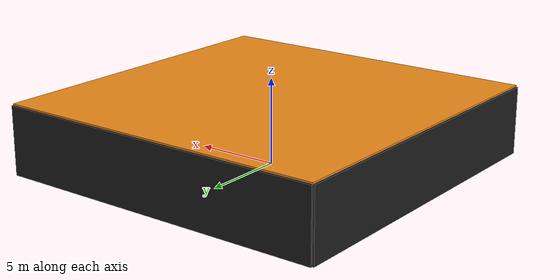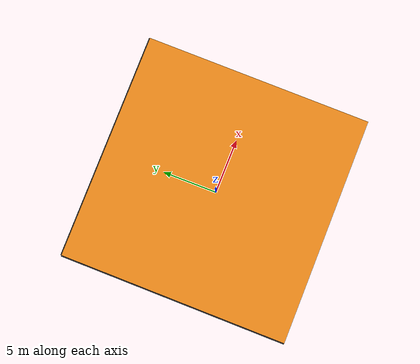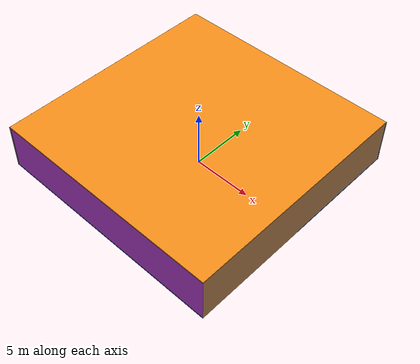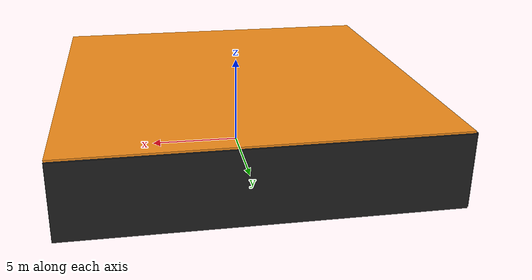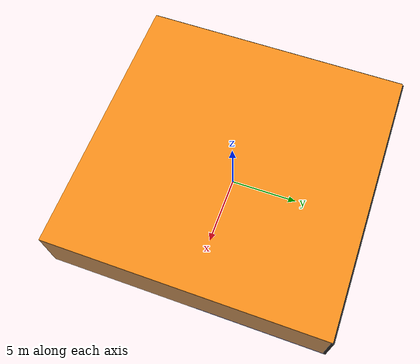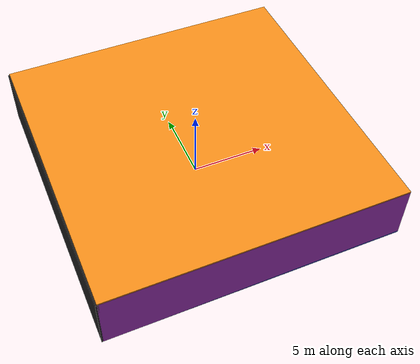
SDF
<sdf version="1.4">
 <world name="default">
  <physics type="ode">
   <max_step_size>0.001</max_step_size>
   <real_time_factor>1</real_time_factor>
   <real_time_update_rate>1000</real_time_update_rate>
   <gravity>0 0 -9.8</gravity>
  </physics>
  <scene><ambient>0.4 0.4 0.4 1</ambient><background>0.7 0.7 0.7 1</background><shadows>1</shadows></scene>
  <model name="Surrounding">
   <static>1</static>
   <link name="Ceiling">
    <collision name="Ceiling_Collision"><geometry><box><size>20 20 0.1</size></box></geometry></collision>
    <visual name="Ceiling_Visual">
     <geometry><box><size>20 20 0.1</size></box></geometry>
     <material>
      <script><uri>file://media/materials/scripts/gazebo.material</uri><name>Gazebo/Orange</name></script>
     </material>
    </visual>
    <pose>0 0 4.05 0 0 0</pose>
   </link>
   <link name="Wall_South">
    <collision name="Wall_South_Collision">
     <geometry><box><size>20 0 4</size></box></geometry>
     <pose>0 0 2 0 -0 0</pose>
    </collision>
    <visual name="Wall_South_Visual">
     <pose>0 0 2 0 -0 0</pose>
     <geometry><box><size>20 0 4</size></box></geometry>
     <material>
      <script><uri>file://media/materials/scripts/gazebo.material</uri><name>Gazebo/PurpleGlow</name></script>
     </material>
    </visual>
    <velocity_decay><linear>0</linear><angular>0</angular></velocity_decay>
    <pose>0 -10 0 0 -0 0</pose>
   </link>
   <link name="Wall_East">
    <collision name="Wall_21_Collision">
     <geometry><box><size>20 0 4</size></box></geometry>
     <pose>0 0 2 0 -0 0</pose>
    </collision>
    <visual name="Wall_21_Visual">
     <pose>0 0 2 0 -0 0</pose>
     <geometry><box><size>20 0 4</size></box></geometry>
     <material>
      <script><uri>file://media/materials/scripts/gazebo.material</uri><name>Gazebo/Wood</name></script>
     </material>
    </visual>
    <velocity_decay><linear>0</linear><angular>0</angular></velocity_decay>
    <pose>10 0 0 0 -0 1.5708</pose>
   </link>
   <link name="Wall_North">
    <collision name="Wall_22_Collision">
     <geometry><box><size>20 0.2 4</size></box></geometry>
     <pose>0 0 2 0 -0 0</pose>
    </collision>
    <visual name="Wall_22_Visual">
     <pose>0 0 2 0 -0 0</pose>
     <geometry><box><size>20 0.2 4</size></box></geometry>
     <material>
      <script><uri>file://media/materials/scripts/gazebo.material</uri><name>Gazebo/Black</name></script>
     </material>
    </visual>
    <velocity_decay><linear>0</linear><angular>0</angular></velocity_decay>
    <pose>0 10 0 0 -0 0</pose>
   </link>
   <link name="Wall_West">
    <collision name="Wall_23_Collision">
     <geometry><box><size>20 0.2 4</size></box></geometry>
     <pose>0 0 2 0 -0 0</pose>
    </collision>
    <visual name="Wall_23_Visual">
     <pose>0 0 2 0 -0 0</pose>
     <geometry><box><size>20 0.2 4</size></box></geometry>
     <material>
      <script><uri>file://media/materials/scripts/gazebo.material</uri><name>Gazebo/FlatBlack</name></script>
     </material>
    </visual>
    <velocity_decay><linear>0</linear><angular>0</angular></velocity_decay>
    <pose>-10 0 0 0 0 -1.5708</pose>
   </link>
   <link name="Ground_link">
    <collision name="collision">
     <pose>0 0 .05 0 -0 0</pose>
     <geometry><box><size>20 20 0.1</size></box></geometry>
    </collision>
    <visual name="visual">
     <pose>0 0 .05 0 -0 0</pose>
     <geometry><box><size>20 20 0.1</size></box></geometry>
     <material>
      <script><uri>file://media/materials/scripts/gazebo.material</uri><name>Gazebo/Blue</name></script>
     </material>
    </visual>
   </link>
   <static>1</static>
  </model>
  <spherical_coordinates>
   <surface_model>EARTH_WGS84</surface_model>
   <latitude_deg>0</latitude_deg>
   <longitude_deg>0</longitude_deg>
   <elevation>0</elevation>
   <heading_deg>0</heading_deg>
  </spherical_coordinates>
  <light name="lightball_0" type="diffuse">
   <diffuse>0.8 0.8 0.8 1</diffuse>
   <specular>0.2 0.2 0.2 1</specular>
   <attenuation>
    <range>100</range>
    <constant>0.7</constant>
    <linear>0.01</linear>
    <quadratic>0.001</quadratic>
   </attenuation>
   <direction>-0.5 0.1 -0.9</direction>
   <pose>-1.20401837294 -0.700289804662 2.22845032972 0 0 0</pose>
  </light>
  <light name="lightball_1" type="diffuse">
   <diffuse>0.8 0.8 0.8 1</diffuse>
   <specular>0.2 0.2 0.2 1</specular>
   <attenuation>
    <range>100</range>
    <constant>0.7</constant>
    <linear>0.01</linear>
    <quadratic>0.001</quadratic>
   </attenuation>
   <direction>-0.5 0.1 -0.9</direction>
   <pose>-0.141475910515 -4.99861035852 1.94339796271 0 0 0</pose>
  </light>
  <light name="lightball_2" type="diffuse">
   <diffuse>0.8 0.8 0.8 1</diffuse>
   <specular>0.2 0.2 0.2 1</specular>
   <attenuation>
    <range>100</range>
    <constant>0.7</constant>
    <linear>0.01</linear>
    <quadratic>0.001</quadratic>
   </attenuation>
   <direction>-0.5 0.1 -0.9</direction>
   <pose>-3.79305912024 -6.11938937915 2.81396132201 0 0 0</pose>
  </light>
  <light name="lightball_3" type="diffuse">
   <diffuse>0.8 0.8 0.8 1</diffuse>
   <specular>0.2 0.2 0.2 1</specular>
   <attenuation>
    <range>100</range>
    <constant>0.7</constant>
    <linear>0.01</linear>
    <quadratic>0.001</quadratic>
   </attenuation>
   <direction>-0.5 0.1 -0.9</direction>
   <pose>8.79840982812 -0.182237962253 2.81920947323 0 0 0</pose>
  </light>
  <light name="lightball_4" type="diffuse">
   <diffuse>0.8 0.8 0.8 1</diffuse>
   <specular>0.2 0.2 0.2 1</specular>
   <attenuation>
    <range>100</range>
    <constant>0.7</constant>
    <linear>0.01</linear>
    <quadratic>0.001</quadratic>
   </attenuation>
   <direction>-0.5 0.1 -0.9</direction>
   <pose>-9.59765636345 1.43883382323 1.00096543095 0 0 0</pose>
  </light>
  <light name="lightball_5" type="diffuse">
   <diffuse>0.8 0.8 0.8 1</diffuse>
   <specular>0.2 0.2 0.2 1</specular>
   <attenuation>
    <range>100</range>
    <constant>0.7</constant>
    <linear>0.01</linear>
    <quadratic>0.001</quadratic>
   </attenuation>
   <direction>-0.5 0.1 -0.9</direction>
   <pose>5.87276827261 -3.17720022247 2.45785352563 0 0 0</pose>
  </light>
  <light name="lightball_6" type="diffuse">
   <diffuse>0.8 0.8 0.8 1</diffuse>
   <specular>0.2 0.2 0.2 1</specular>
   <attenuation>
    <range>100</range>
    <constant>0.7</constant>
    <linear>0.01</linear>
    <quadratic>0.001</quadratic>
   </attenuation>
   <direction>-0.5 0.1 -0.9</direction>
   <pose>-3.81171704269 -0.941354023113 2.34841827773 0 0 0</pose>
  </light>
  <light name="lightball_7" type="diffuse">
   <diffuse>0.8 0.8 0.8 1</diffuse>
   <specular>0.2 0.2 0.2 1</specular>
   <attenuation>
    <range>100</range>
    <constant>0.7</constant>
    <linear>0.01</linear>
    <quadratic>0.001</quadratic>
   </attenuation>
   <direction>-0.5 0.1 -0.9</direction>
   <pose>-1.74006249711 -1.08918120271 3.14449385382 0 0 0</pose>
  </light>
  <light name="lightball_8" type="diffuse">
   <diffuse>0.8 0.8 0.8 1</diffuse>
   <specular>0.2 0.2 0.2 1</specular>
   <attenuation>
    <range>100</range>
    <constant>0.7</constant>
    <linear>0.01</linear>
    <quadratic>0.001</quadratic>
   </attenuation>
   <direction>-0.5 0.1 -0.9</direction>
   <pose>-5.89756272301 -7.03874268331 2.58522310734 0 0 0</pose>
  </light>
  <light name="lightball_9" type="diffuse">
   <diffuse>0.8 0.8 0.8 1</diffuse>
   <specular>0.2 0.2 0.2 1</specular>
   <attenuation>
    <range>100</range>
    <constant>0.7</constant>
    <linear>0.01</linear>
    <quadratic>0.001</quadratic>
   </attenuation>
   <direction>-0.5 0.1 -0.9</direction>
   <pose>6.18974308214 6.95367720947 2.65506186744 0 0 0</pose>
  </light>
  <include><uri>model://cabinet</uri><pose>-5.23871808103 -3.88863780165 0 0 0 1.15764635148</pose></include>
  <include><uri>model://table</uri><pose>-4.22773191361 1.36779536095 0 0 0 1.53401406003</pose></include>
  <include>
   <uri>model://textured_shapes</uri>
   <pose>-4.93403682365 4.08497399261 0 0 0 0.555159066789</pose>
  </include>
  <include><uri>model://table</uri><pose>5.1806613456 -4.06615593443 0 0 0 2.92140050704</pose></include>
 </world>
</sdf>

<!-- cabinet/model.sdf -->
<sdf version="1.5">
  <model name="cabinet">
    <static>true</static>
    <link name="cabinet_bottom_plate">
      <inertial>
        <pose>0 0 -1 0 0 0</pose>
        <inertia>
          <ixx>2.050000</ixx>
          <ixy>0</ixy>
          <ixz>0</ixz>
          <iyy>2.050000</iyy>
          <iyz>0</iyz>
          <izz>2.050000</izz>
        </inertia>
        <mass>25.000000</mass>
      </inertial>
      <collision name="cabinet_bottom_plate_geom">
        <pose>0 0 0.010000 0 0 0</pose>
        <geometry>
          <box>
            <size>0.450000 0.450000 0.020000</size>
          </box>
        </geometry>
      </collision>
      <visual name="cabinet_bottom_plate_geom_visual">
        <pose>0 0 0.010000 0 0 0</pose>
        <geometry>
          <box>
            <size>0.450000 0.450000 0.020000</size>
          </box>
        </geometry>
        <material>
          <script>
            <uri>model://media/materials/scripts/gazebo.material</uri>
            <name>Gazebo/Wood</name>
          </script>
        </material>
      </visual>
      <collision name="cabinet_bottom_plate_geom_cabinet_back_plate">
        <pose>0.235000 0 0.510000 0 0 0</pose>
        <geometry>
          <box>
            <size>0.020000 0.450000 1.020000</size>
          </box>
        </geometry>
      </collision>
      <visual name="cabinet_bottom_plate_geom_cabinet_back_plate_visual">
        <pose>0.235000 0 0.510000 0 0 0</pose>
        <geometry>
          <box>
            <size>0.020000 0.450000 1.020000</size>
          </box>
        </geometry>
        <material>
          <script>
            <uri>model://media/materials/scripts/gazebo.material</uri>
            <name>Gazebo/Wood</name>
          </script>
        </material>
      </visual>
      <collision name="cabinet_bottom_plate_geom_cabinet_left_plate">
        <pose>0 0.235000 0.510000 0 0 0</pose>
        <geometry>
          <box>
            <size>0.450000 0.020000 1.020000</size>
          </box>
        </geometry>
      </collision>
      <visual name="cabinet_bottom_plate_geom_cabinet_left_plate_visual">
        <pose>0 0.235000 0.510000 0 0 0</pose>
        <geometry>
          <box>
            <size>0.450000 0.020000 1.020000</size>
          </box>
        </geometry>
        <material>
          <script>
            <uri>model://media/materials/scripts/gazebo.material</uri>
            <name>Gazebo/Wood</name>
          </script>
        </material>
      </visual>
      <collision name="cabinet_bottom_plate_geom_cabinet_middle_plate">
        <pose>0 0 0.510000 0 0 0</pose>
        <geometry>
          <box>
            <size>0.450000 0.450000 0.020000</size>
          </box>
        </geometry>
      </collision>
      <visual name="cabinet_bottom_plate_geom_cabinet_middle_plate_visual">
        <pose>0 0 0.510000 0 0 0</pose>
        <geometry>
          <box>
            <size>0.450000 0.450000 0.020000</size>
          </box>
        </geometry>
        <material>
          <script>
            <uri>model://media/materials/scripts/gazebo.material</uri>
            <name>Gazebo/Wood</name>
          </script>
        </material>
      </visual>
      <collision name="cabinet_bottom_plate_geom_cabinet_right_plate">
        <pose>0 -0.235000 0.510000 0 0 0</pose>
        <geometry>
          <box>
            <size>0.450000 0.020000 1.020000</size>
          </box>
        </geometry>
      </collision>
      <visual name="cabinet_bottom_plate_geom_cabinet_right_plate_visual">
        <pose>0 -0.235000 0.510000 0 0 0</pose>
        <geometry>
          <box>
            <size>0.450000 0.020000 1.020000</size>
          </box>
        </geometry>
        <material>
          <script>
            <uri>model://media/materials/scripts/gazebo.material</uri>
            <name>Gazebo/Wood</name>
          </script>
        </material>
      </visual>
      <collision name="cabinet_bottom_plate_geom_cabinet_top_plate">
        <pose>0 0 1.010000 0 0 0</pose>
        <geometry>
          <box>
            <size>0.450000 0.450000 0.020000</size>
          </box>
        </geometry>
      </collision>
      <visual name="cabinet_bottom_plate_geom_cabinet_top_plate_visual">
        <pose>0 0 1.010000 0 0 0</pose>
        <geometry>
          <box>
            <size>0.450000 0.450000 0.020000</size>
          </box>
        </geometry>
        <material>
          <script>
            <uri>model://media/materials/scripts/gazebo.material</uri>
            <name>Gazebo/Wood</name>
          </script>
        </material>
      </visual>
    </link>
  </model>
</sdf>

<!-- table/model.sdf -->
<sdf version="1.5">
  <model name="table">
    <static>true</static>
    <link name="link">
      <collision name="surface">
        <pose>0 0 1.0 0 0 0</pose>
        <geometry>
          <box>
            <size>1.5 0.8 0.03</size>
          </box>
        </geometry>
        <surface>
          <friction>
            <ode>
              <mu>0.6</mu>
              <mu2>0.6</mu2>
            </ode>
          </friction>
        </surface>
      </collision>
      <visual name="visual1">
        <pose>0 0 1.0 0 0 0</pose>
        <geometry>
          <box>
            <size>1.5 0.8 0.03</size>
          </box>
        </geometry>
        <material>
          <script>
            <uri>model://media/materials/scripts/gazebo.material</uri>
            <name>Gazebo/Wood</name>
          </script>
        </material>
      </visual>
      <collision name="front_left_leg">
        <pose>0.68 0.38 0.5 0 0 0</pose>
        <geometry>
          <cylinder>
            <radius>0.02</radius>
            <length>1.0</length>
          </cylinder>
        </geometry>
      </collision>
      <visual name="front_left_leg">
        <pose>0.68 0.38 0.5 0 0 0</pose>
        <geometry>
          <cylinder>
            <radius>0.02</radius>
            <length>1.0</length>
          </cylinder>
        </geometry>
        <material>
          <script>
            <uri>model://media/materials/scripts/gazebo.material</uri>
            <name>Gazebo/Grey</name>
          </script>
        </material>
      </visual>
      <collision name="front_right_leg">
        <pose>0.68 -0.38 0.5 0 0 0</pose>
        <geometry>
          <cylinder>
            <radius>0.02</radius>
            <length>1.0</length>
          </cylinder>
        </geometry>
      </collision>
      <visual name="front_right_leg">
        <pose>0.68 -0.38 0.5 0 0 0</pose>
        <geometry>
          <cylinder>
            <radius>0.02</radius>
            <length>1.0</length>
          </cylinder>
        </geometry>
        <material>
          <script>
            <uri>model://media/materials/scripts/gazebo.material</uri>
            <name>Gazebo/Grey</name>
          </script>
        </material>
      </visual>
      <collision name="back_right_leg">
        <pose>-0.68 -0.38 0.5 0 0 0</pose>
        <geometry>
          <cylinder>
            <radius>0.02</radius>
            <length>1.0</length>
          </cylinder>
        </geometry>
      </collision>
      <visual name="back_right_leg">
        <pose>-0.68 -0.38 0.5 0 0 0</pose>
        <geometry>
          <cylinder>
            <radius>0.02</radius>
            <length>1.0</length>
          </cylinder>
        </geometry>
        <material>
          <script>
            <uri>model://media/materials/scripts/gazebo.material</uri>
            <name>Gazebo/Grey</name>
          </script>
        </material>
      </visual>
      <collision name="back_left_leg">
        <pose>-0.68 0.38 0.5 0 0 0</pose>
        <geometry>
          <cylinder>
            <radius>0.02</radius>
            <length>1.0</length>
          </cylinder>
        </geometry>
      </collision>
      <visual name="back_left_leg">
        <pose>-0.68 0.38 0.5 0 0 0</pose>
        <geometry>
          <cylinder>
            <radius>0.02</radius>
            <length>1.0</length>
          </cylinder>
        </geometry>
        <material>
          <script>
            <uri>model://media/materials/scripts/gazebo.material</uri>
            <name>Gazebo/Grey</name>
          </script>
        </material>
      </visual>
    </link>
  </model>
</sdf>

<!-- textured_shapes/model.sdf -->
<sdf version="1.6">
  <model name="textured_shapes">
    <pose>0 0 0.5 0 0 0</pose>
    <link name="box">
      <pose>0 -1.5 0 0 0 0</pose>
      <collision name="collision">
        <geometry>
          <box>
            <size>1 1 1</size>
          </box>
        </geometry>
      </collision>
      <visual name="visual">
        <geometry>
          <box>
            <size>1 1 1</size>
          </box>
        </geometry>
        <material>
          <script>
            <uri>model://../model_source/models/textured_shapes/materials/scripts</uri>
            <uri>model://../model_source/models/textured_shapes/materials/textures</uri>
            <name>TexturedShape/Squares</name>
          </script>
        </material>
      </visual>
    </link>
    <link name="sphere">
      <collision name="collision">
        <geometry>
          <sphere>
            <radius>0.5</radius>
          </sphere>
        </geometry>
      </collision>
      <visual name="visual">
        <geometry>
          <sphere>
            <radius>0.5</radius>
          </sphere>
        </geometry>
        <material>
          <script>
            <uri>model://../model_source/models/textured_shapes/materials/scripts</uri>
            <uri>model://../model_source/models/textured_shapes/materials/textures</uri>
            <name>TexturedShape/Squares</name>
          </script>
        </material>
      </visual>
    </link>
    <link name="cylinder">
      <pose>0 1.5 0 0 0 0</pose>
      <collision name="collision">
        <geometry>
          <cylinder>
            <radius>0.5</radius>
            <length>1</length>
          </cylinder>
        </geometry>
      </collision>
      <visual name="visual">
        <geometry>
          <cylinder>
            <radius>0.5</radius>
            <length>1</length>
          </cylinder>
        </geometry>
        <material>
          <script>
            <uri>model://../model_source/models/textured_shapes/materials/scripts</uri>
            <uri>model://../model_source/models/textured_shapes/materials/textures</uri>
            <name>TexturedShape/Squares</name>
          </script>
        </material>
      </visual>
    </link>
  </model>
</sdf>
